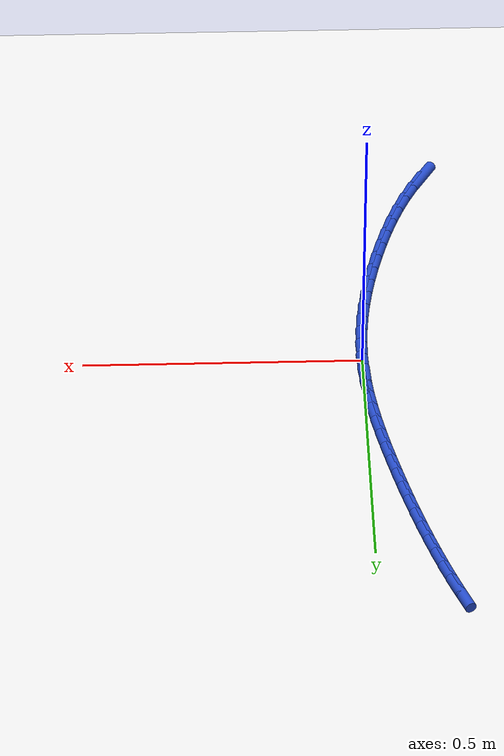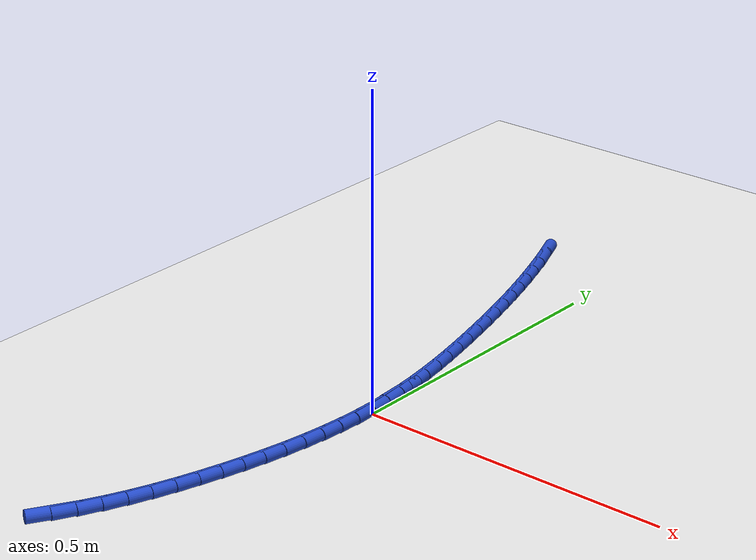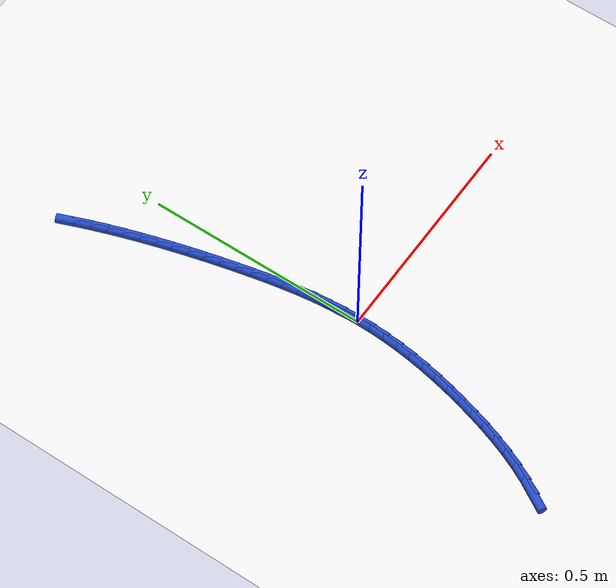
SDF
<sdf version="1.6">
 <world name="default">
  <model name="ground_plane">
   <static>1</static>
   <link name="link">
    <collision name="collision">
     <geometry><plane><normal>0 0 1</normal><size>100 100</size></plane></geometry>
     <surface><friction><ode><mu>100</mu><mu2>50</mu2></ode></friction></surface>
    </collision>
    <visual name="visual">
     <cast_shadows>0</cast_shadows>
     <geometry><plane><normal>0 0 1</normal><size>100 100</size></plane></geometry>
     <material>
      <script><uri>file://media/materials/scripts/gazebo.material</uri><name>Gazebo/WhiteGlow</name></script>
     </material>
    </visual>
   </link>
  </model>
  <model name="line">
   <link name="link_0">
    <pose>3.469446951953614e-18 -4.85722573273506e-17 0.01 0 1.57 -1.5387059002571244</pose>
    <collision name="collision">
     <geometry><cylinder><radius>0.01</radius><length>0.08</length></cylinder></geometry>
    </collision>
    <visual name="visual">
     <material>
      <script><name>Gazebo/Blue</name><uri>file://media/materials/scripts/gazebo.material</uri></script>
     </material>
     <geometry><cylinder><radius>0.01</radius><length>0.08</length></cylinder></geometry>
    </visual>
   </link>
   <link name="link_1">
    <pose>-0.001106931188184582 0.03448228367683688 0.01 0 1.57 -1.4994186272707228</pose>
    <collision name="collision">
     <geometry><cylinder><radius>0.01</radius><length>0.08</length></cylinder></geometry>
    </collision>
    <visual name="visual">
     <material>
      <script><name>Gazebo/Blue</name><uri>file://media/materials/scripts/gazebo.material</uri></script>
     </material>
     <geometry><cylinder><radius>0.01</radius><length>0.08</length></cylinder></geometry>
    </visual>
   </link>
   <link name="link_2">
    <pose>-0.003572972429707237 0.06897277382835876 0.01 0 1.57 -1.4643418091511784</pose>
    <collision name="collision">
     <geometry><cylinder><radius>0.01</radius><length>0.08</length></cylinder></geometry>
    </collision>
    <visual name="visual">
     <material>
      <script><name>Gazebo/Blue</name><uri>file://media/materials/scripts/gazebo.material</uri></script>
     </material>
     <geometry><cylinder><radius>0.01</radius><length>0.08</length></cylinder></geometry>
    </visual>
   </link>
   <link name="link_3">
    <pose>-0.007258569617800207 0.1034632239956365 0.01 0 1.57 -1.4334615511302427</pose>
    <collision name="collision">
     <geometry><cylinder><radius>0.01</radius><length>0.08</length></cylinder></geometry>
    </collision>
    <visual name="visual">
     <material>
      <script><name>Gazebo/Blue</name><uri>file://media/materials/scripts/gazebo.material</uri></script>
     </material>
     <geometry><cylinder><radius>0.01</radius><length>0.08</length></cylinder></geometry>
    </visual>
   </link>
   <link name="link_4">
    <pose>-0.012024168645695749 0.13794538771974094 0.01 0 1.57 -1.4067269451403537</pose>
    <collision name="collision">
     <geometry><cylinder><radius>0.01</radius><length>0.08</length></cylinder></geometry>
    </collision>
    <visual name="visual">
     <material>
      <script><name>Gazebo/Blue</name><uri>file://media/materials/scripts/gazebo.material</uri></script>
     </material>
     <geometry><cylinder><radius>0.01</radius><length>0.08</length></cylinder></geometry>
    </visual>
   </link>
   <link name="link_5">
    <pose>-0.017730215406626105 0.17241101854174293 0.01 0 1.57 -1.3840664514117882</pose>
    <collision name="collision">
     <geometry><cylinder><radius>0.01</radius><length>0.08</length></cylinder></geometry>
    </collision>
    <visual name="visual">
     <material>
      <script><name>Gazebo/Blue</name><uri>file://media/materials/scripts/gazebo.material</uri></script>
     </material>
     <geometry><cylinder><radius>0.01</radius><length>0.08</length></cylinder></geometry>
    </visual>
   </link>
   <link name="link_6">
    <pose>-0.024237155793823534 0.20685187000271332 0.01 0 1.57 -1.3654014139635433</pose>
    <collision name="collision">
     <geometry><cylinder><radius>0.01</radius><length>0.08</length></cylinder></geometry>
    </collision>
    <visual name="visual">
     <material>
      <script><name>Gazebo/Blue</name><uri>file://media/materials/scripts/gazebo.material</uri></script>
     </material>
     <geometry><cylinder><radius>0.01</radius><length>0.08</length></cylinder></geometry>
    </visual>
   </link>
   <link name="link_7">
    <pose>-0.03140543570052029 0.24125969564372302 0.01 0 1.57 -1.3506567571870371</pose>
    <collision name="collision">
     <geometry><cylinder><radius>0.01</radius><length>0.08</length></cylinder></geometry>
    </collision>
    <visual name="visual">
     <material>
      <script><name>Gazebo/Blue</name><uri>file://media/materials/scripts/gazebo.material</uri></script>
     </material>
     <geometry><cylinder><radius>0.01</radius><length>0.08</length></cylinder></geometry>
    </visual>
   </link>
   <link name="link_8">
    <pose>-0.039095501019948624 0.2756262490058428 0.01 0 1.57 -1.33934520246429</pose>
    <collision name="collision">
     <geometry><cylinder><radius>0.01</radius><length>0.08</length></cylinder></geometry>
    </collision>
    <visual name="visual">
     <material>
      <script><name>Gazebo/Blue</name><uri>file://media/materials/scripts/gazebo.material</uri></script>
     </material>
     <geometry><cylinder><radius>0.01</radius><length>0.08</length></cylinder></geometry>
    </visual>
   </link>
   <link name="link_9">
    <pose>-0.04718261433602917 0.3099409973067222 0.01 0 1.57 -1.328505576449126</pose>
    <collision name="collision">
     <geometry><cylinder><radius>0.01</radius><length>0.08</length></cylinder></geometry>
    </collision>
    <visual name="visual">
     <material>
      <script><name>Gazebo/Blue</name><uri>file://media/materials/scripts/gazebo.material</uri></script>
     </material>
     <geometry><cylinder><radius>0.01</radius><length>0.08</length></cylinder></geometry>
    </visual>
   </link>
   <link name="link_10">
    <pose>-0.05564406958337792 0.3441776635825525 0.01 0 1.57 -1.3168845990055629</pose>
    <collision name="collision">
     <geometry><cylinder><radius>0.01</radius><length>0.08</length></cylinder></geometry>
    </collision>
    <visual name="visual">
     <material>
      <script><name>Gazebo/Blue</name><uri>file://media/materials/scripts/gazebo.material</uri></script>
     </material>
     <geometry><cylinder><radius>0.01</radius><length>0.08</length></cylinder></geometry>
    </visual>
   </link>
   <link name="link_11">
    <pose>-0.0645001225209716 0.37830334154673434 0.01 0 1.57 -1.3044537958714792</pose>
    <collision name="collision">
     <geometry><cylinder><radius>0.01</radius><length>0.08</length></cylinder></geometry>
    </collision>
    <visual name="visual">
     <material>
      <script><name>Gazebo/Blue</name><uri>file://media/materials/scripts/gazebo.material</uri></script>
     </material>
     <geometry><cylinder><radius>0.01</radius><length>0.08</length></cylinder></geometry>
    </visual>
   </link>
   <link name="link_12">
    <pose>-0.07377117882215029 0.41228510177978905 0.01 0 1.57 -1.2911866325705592</pose>
    <collision name="collision">
     <geometry><cylinder><radius>0.01</radius><length>0.08</length></cylinder></geometry>
    </collision>
    <visual name="visual">
     <material>
      <script><name>Gazebo/Blue</name><uri>file://media/materials/scripts/gazebo.material</uri></script>
     </material>
     <geometry><cylinder><radius>0.01</radius><length>0.08</length></cylinder></geometry>
    </visual>
   </link>
   <link name="link_13">
    <pose>-0.083477644160254 0.44609001486223776 0.01 0 1.57 -1.2770543189389454</pose>
    <collision name="collision">
     <geometry><cylinder><radius>0.01</radius><length>0.08</length></cylinder></geometry>
    </collision>
    <visual name="visual">
     <material>
      <script><name>Gazebo/Blue</name><uri>file://media/materials/scripts/gazebo.material</uri></script>
     </material>
     <geometry><cylinder><radius>0.01</radius><length>0.08</length></cylinder></geometry>
    </visual>
   </link>
   <link name="link_14">
    <pose>-0.09363992420862281 0.47968515137460177 0.01 0 1.57 -1.2620259272889152</pose>
    <collision name="collision">
     <geometry><cylinder><radius>0.01</radius><length>0.08</length></cylinder></geometry>
    </collision>
    <visual name="visual">
     <material>
      <script><name>Gazebo/Blue</name><uri>file://media/materials/scripts/gazebo.material</uri></script>
     </material>
     <geometry><cylinder><radius>0.01</radius><length>0.08</length></cylinder></geometry>
    </visual>
   </link>
   <link name="link_15">
    <pose>-0.10427842464059679 0.5130375818974023 0.01 0 1.57 -1.2460685435818915</pose>
    <collision name="collision">
     <geometry><cylinder><radius>0.01</radius><length>0.08</length></cylinder></geometry>
    </collision>
    <visual name="visual">
     <material>
      <script><name>Gazebo/Blue</name><uri>file://media/materials/scripts/gazebo.material</uri></script>
     </material>
     <geometry><cylinder><radius>0.01</radius><length>0.08</length></cylinder></geometry>
    </visual>
   </link>
   <link name="link_16">
    <pose>-0.11541355112951603 0.5461143770111606 0.01 0 1.57 -1.2291474615913758</pose>
    <collision name="collision">
     <geometry><cylinder><radius>0.01</radius><length>0.08</length></cylinder></geometry>
    </collision>
    <visual name="visual">
     <material>
      <script><name>Gazebo/Blue</name><uri>file://media/materials/scripts/gazebo.material</uri></script>
     </material>
     <geometry><cylinder><radius>0.01</radius><length>0.08</length></cylinder></geometry>
    </visual>
   </link>
   <link name="link_17">
    <pose>-0.12706570934872058 0.578882607296398 0.01 0 1.57 -1.2112264312979661</pose>
    <collision name="collision">
     <geometry><cylinder><radius>0.01</radius><length>0.08</length></cylinder></geometry>
    </collision>
    <visual name="visual">
     <material>
      <script><name>Gazebo/Blue</name><uri>file://media/materials/scripts/gazebo.material</uri></script>
     </material>
     <geometry><cylinder><radius>0.01</radius><length>0.08</length></cylinder></geometry>
    </visual>
   </link>
   <link name="link_18">
    <pose>-0.13925530497155042 0.6113093433336356 0.01 0 1.57 -1.1922679740397317</pose>
    <collision name="collision">
     <geometry><cylinder><radius>0.01</radius><length>0.08</length></cylinder></geometry>
    </collision>
    <visual name="visual">
     <material>
      <script><name>Gazebo/Blue</name><uri>file://media/materials/scripts/gazebo.material</uri></script>
     </material>
     <geometry><cylinder><radius>0.01</radius><length>0.08</length></cylinder></geometry>
    </visual>
   </link>
   <link name="link_205">
    <pose>-0.1323813774510536 -0.5036052574937812 0.01 0 1.57 1.0345994640411624</pose>
    <collision name="collision">
     <geometry><cylinder><radius>0.01</radius><length>0.08</length></cylinder></geometry>
    </collision>
    <visual name="visual">
     <material>
      <script><name>Gazebo/Blue</name><uri>file://media/materials/scripts/gazebo.material</uri></script>
     </material>
     <geometry><cylinder><radius>0.01</radius><length>0.08</length></cylinder></geometry>
    </visual>
   </link>
   <link name="link_206">
    <pose>-0.11490587125107277 -0.47419866378733894 0.01 0 1.57 1.0948595172635043</pose>
    <collision name="collision">
     <geometry><cylinder><radius>0.01</radius><length>0.08</length></cylinder></geometry>
    </collision>
    <visual name="visual">
     <material>
      <script><name>Gazebo/Blue</name><uri>file://media/materials/scripts/gazebo.material</uri></script>
     </material>
     <geometry><cylinder><radius>0.01</radius><length>0.08</length></cylinder></geometry>
    </visual>
   </link>
   <link name="link_207">
    <pose>-0.09898303205817582 -0.4433079566301281 0.01 0 1.57 1.147252290236366</pose>
    <collision name="collision">
     <geometry><cylinder><radius>0.01</radius><length>0.08</length></cylinder></geometry>
    </collision>
    <visual name="visual">
     <material>
      <script><name>Gazebo/Blue</name><uri>file://media/materials/scripts/gazebo.material</uri></script>
     </material>
     <geometry><cylinder><radius>0.01</radius><length>0.08</length></cylinder></geometry>
    </visual>
   </link>
   <link name="link_208">
    <pose>-0.08450355579576409 -0.41119058967121297 0.01 0 1.57 1.1926165184624045</pose>
    <collision name="collision">
     <geometry><cylinder><radius>0.01</radius><length>0.08</length></cylinder></geometry>
    </collision>
    <visual name="visual">
     <material>
      <script><name>Gazebo/Blue</name><uri>file://media/materials/scripts/gazebo.material</uri></script>
     </material>
     <geometry><cylinder><radius>0.01</radius><length>0.08</length></cylinder></geometry>
    </visual>
   </link>
   <link name="link_209">
    <pose>-0.07135813838723755 -0.37810401655965564 0.01 0 1.57 1.2317183693926104</pose>
    <collision name="collision">
     <geometry><cylinder><radius>0.01</radius><length>0.08</length></cylinder></geometry>
    </collision>
    <visual name="visual">
     <material>
      <script><name>Gazebo/Blue</name><uri>file://media/materials/scripts/gazebo.material</uri></script>
     </material>
     <geometry><cylinder><radius>0.01</radius><length>0.08</length></cylinder></geometry>
    </visual>
   </link>
   <link name="link_210">
    <pose>-0.059437475755996796 -0.3443056909445188 0.01 0 1.57 1.2652202931505947</pose>
    <collision name="collision">
     <geometry><cylinder><radius>0.01</radius><length>0.08</length></cylinder></geometry>
    </collision>
    <visual name="visual">
     <material>
      <script><name>Gazebo/Blue</name><uri>file://media/materials/scripts/gazebo.material</uri></script>
     </material>
     <geometry><cylinder><radius>0.01</radius><length>0.08</length></cylinder></geometry>
    </visual>
   </link>
   <link name="link_211">
    <pose>-0.048632263825442265 -0.3100530664748653 0.01 0 1.57 1.2936746583420118</pose>
    <collision name="collision">
     <geometry><cylinder><radius>0.01</radius><length>0.08</length></cylinder></geometry>
    </collision>
    <visual name="visual">
     <material>
      <script><name>Gazebo/Blue</name><uri>file://media/materials/scripts/gazebo.material</uri></script>
     </material>
     <geometry><cylinder><radius>0.01</radius><length>0.08</length></cylinder></geometry>
    </visual>
   </link>
   <link name="link_212">
    <pose>-0.0388333677015954 -0.27560335192939184 0.01 0 1.57 1.319320096688032</pose>
    <collision name="collision">
     <geometry><cylinder><radius>0.01</radius><length>0.08</length></cylinder></geometry>
    </collision>
    <visual name="visual">
     <material>
      <script><name>Gazebo/Blue</name><uri>file://media/materials/scripts/gazebo.material</uri></script>
     </material>
     <geometry><cylinder><radius>0.01</radius><length>0.08</length></cylinder></geometry>
    </visual>
   </link>
   <link name="link_213">
    <pose>-0.02998013613069351 -0.2411435821729487 0.01 0 1.57 1.3466669473168347</pose>
    <collision name="collision">
     <geometry><cylinder><radius>0.01</radius><length>0.08</length></cylinder></geometry>
    </collision>
    <visual name="visual">
     <material>
      <script><name>Gazebo/Blue</name><uri>file://media/materials/scripts/gazebo.material</uri></script>
     </material>
     <geometry><cylinder><radius>0.01</radius><length>0.08</length></cylinder></geometry>
    </visual>
   </link>
   <link name="link_214">
    <pose>-0.02212706313903028 -0.20669413389605892 0.01 0 1.57 1.376386599649788</pose>
    <collision name="collision">
     <geometry><cylinder><radius>0.01</radius><length>0.08</length></cylinder></geometry>
    </collision>
    <visual name="visual">
     <material>
      <script><name>Gazebo/Blue</name><uri>file://media/materials/scripts/gazebo.material</uri></script>
     </material>
     <geometry><cylinder><radius>0.01</radius><length>0.08</length></cylinder></geometry>
    </visual>
   </link>
   <link name="link_215">
    <pose>-0.015345363809586749 -0.17225118218255583 0.01 0 1.57 1.4085005449012622</pose>
    <collision name="collision">
     <geometry><cylinder><radius>0.01</radius><length>0.08</length></cylinder></geometry>
    </collision>
    <visual name="visual">
     <material>
      <script><name>Gazebo/Blue</name><uri>file://media/materials/scripts/gazebo.material</uri></script>
     </material>
     <geometry><cylinder><radius>0.01</radius><length>0.08</length></cylinder></geometry>
    </visual>
   </link>
   <link name="link_216">
    <pose>-0.009706253225343792 -0.13781090211627173 0.01 0 1.57 1.4430085989490824</pose>
    <collision name="collision">
     <geometry><cylinder><radius>0.01</radius><length>0.08</length></cylinder></geometry>
    </collision>
    <visual name="visual">
     <material>
      <script><name>Gazebo/Blue</name><uri>file://media/materials/scripts/gazebo.material</uri></script>
     </material>
     <geometry><cylinder><radius>0.01</radius><length>0.08</length></cylinder></geometry>
    </visual>
   </link>
   <link name="link_217">
    <pose>-0.005280946469282715 -0.10336946878104152 0.01 0 1.57 1.4798831885401564</pose>
    <collision name="collision">
     <geometry><cylinder><radius>0.01</radius><length>0.08</length></cylinder></geometry>
    </collision>
    <visual name="visual">
     <material>
      <script><name>Gazebo/Blue</name><uri>file://media/materials/scripts/gazebo.material</uri></script>
     </material>
     <geometry><cylinder><radius>0.01</radius><length>0.08</length></cylinder></geometry>
    </visual>
   </link>
   <link name="link_218">
    <pose>-0.002140658624384379 -0.0689230572606975 0.01 0 1.57 1.5190636051436945</pose>
    <collision name="collision">
     <geometry><cylinder><radius>0.01</radius><length>0.08</length></cylinder></geometry>
    </collision>
    <visual name="visual">
     <material>
      <script><name>Gazebo/Blue</name><uri>file://media/materials/scripts/gazebo.material</uri></script>
     </material>
     <geometry><cylinder><radius>0.01</radius><length>0.08</length></cylinder></geometry>
    </visual>
   </link>
   <link name="link_219">
    <pose>-0.00035660477362980253 -0.03446784263907297 0.01 0 1.57 1.560450682174125</pose>
    <collision name="collision">
     <geometry><cylinder><radius>0.01</radius><length>0.08</length></cylinder></geometry>
    </collision>
    <visual name="visual">
     <material>
      <script><name>Gazebo/Blue</name><uri>file://media/materials/scripts/gazebo.material</uri></script>
     </material>
     <geometry><cylinder><radius>0.01</radius><length>0.08</length></cylinder></geometry>
    </visual>
   </link>
   <link name="link_220">
    <pose>-1.214306433183765e-17 -2.42861286636753e-16 0.01 0 1.57 -1.5376901809904266</pose>
    <collision name="collision">
     <geometry><cylinder><radius>0.01</radius><length>0.08</length></cylinder></geometry>
    </collision>
    <visual name="visual">
     <material>
      <script><name>Gazebo/Blue</name><uri>file://media/materials/scripts/gazebo.material</uri></script>
     </material>
     <geometry><cylinder><radius>0.01</radius><length>0.08</length></cylinder></geometry>
    </visual>
   </link>
   <link name="link_221">
    <pose>-0.0011420593864759961 0.03448429557268493 0.01 0 1.57 -1.492361072677358</pose>
    <collision name="collision">
     <geometry><cylinder><radius>0.01</radius><length>0.08</length></cylinder></geometry>
    </collision>
    <visual name="visual">
     <material>
      <script><name>Gazebo/Blue</name><uri>file://media/materials/scripts/gazebo.material</uri></script>
     </material>
     <geometry><cylinder><radius>0.01</radius><length>0.08</length></cylinder></geometry>
    </visual>
   </link>
   <link name="link_222">
    <pose>-0.0038539980160388863 0.06898886899515275 0.01 0 1.57 -1.5149902759609126</pose>
    <collision name="collision">
     <geometry><cylinder><radius>0.01</radius><length>0.08</length></cylinder></geometry>
    </collision>
    <visual name="visual">
     <material>
      <script><name>Gazebo/Blue</name><uri>file://media/materials/scripts/gazebo.material</uri></script>
     </material>
     <geometry><cylinder><radius>0.01</radius><length>0.08</length></cylinder></geometry>
    </visual>
   </link>
  </model>
 </world>
</sdf>
